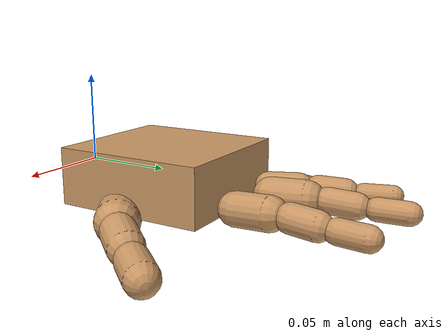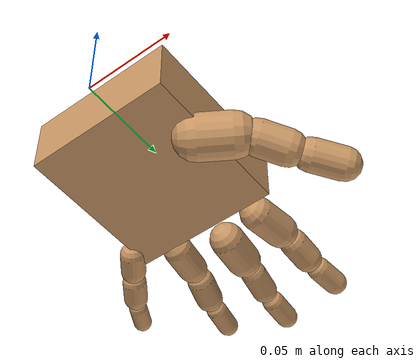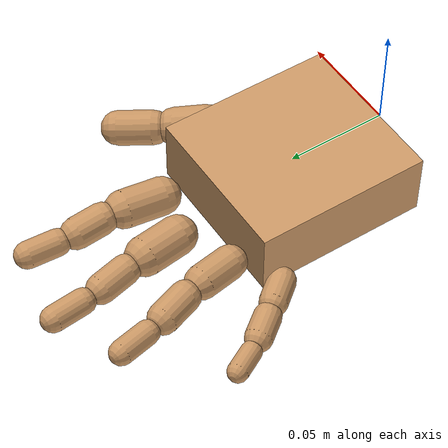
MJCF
<?xml version='1.0' encoding='utf-8'?>
<mujoco model="smplx_left_hand">
  <compiler coordinate="local" />
  <worldbody>
    <light pos="0 0 2" dir="0 0 -1" diffuse="1 1 1" specular="0.1 0.1 0.1" directional="true" />
    <body name="L_Wrist_Base" pos="0 0 0">
      <joint name="floating_base_joint" type="free" limited="false" actuatorfrclimited="false" />
      <body name="L_Wrist" pos="0 0 0" quat="1 0 0 0">
        <joint name="L_Wrist_x" type="hinge" pos="0 0 0" axis="1 0 0" stiffness="300" damping="30" armature="0.02" range="-180.0000 180.0000" limited="true" />
        <joint name="L_Wrist_y" type="hinge" pos="0 0 0" axis="0 1 0" stiffness="300" damping="30" armature="0.02" range="-180.0000 180.0000" limited="true" />
        <joint name="L_Wrist_z" type="hinge" pos="0 0 0" axis="0 0 1" stiffness="300" damping="30" armature="0.02" range="-180.0000 180.0000" limited="true" />
        <geom type="box" density="1198.336433" pos="-0.0031 0.0523 -0.0013" size="0.04 0.0428 0.0159" quat="1.0000 0.0000 0.0000 0.0000" conaffinity="1" condim="3" contype="7" margin="0.001" rgba="0.8 0.6 .4 1" />
        <body name="L_Index1" pos="0.0194 0.1019 -0.0087">
          <joint name="L_Index1_x" type="hinge" pos="0 0 0" axis="1 0 0" stiffness="100" damping="10" armature="0.02" range="-90 20" limited="true" />
          <joint name="L_Index1_y" type="hinge" pos="0 0 0" axis="0 1 0" stiffness="100" damping="10" armature="0.02" range="-0.1 0.1" limited="true" />
          <joint name="L_Index1_z" type="hinge" pos="0 0 0" axis="0 0 1" stiffness="100" damping="10" armature="0.02" range="-20 20" limited="true" />
          <geom type="capsule" contype="1" conaffinity="1" density="1000" fromto="0.0006 0.0064 0.0004 0.0024 0.0256 0.0018" size="0.0091" condim="3" margin="0.001" rgba="0.8 0.6 .4 1" />
          <body name="L_Index2" pos="0.003 0.0319 0.0022">
            <joint name="L_Index2_x" type="hinge" pos="0 0 0" axis="1 0 0" stiffness="100" damping="10" armature="0.02" range="-100 0" limited="true" />
            <joint name="L_Index2_y" type="hinge" pos="0 0 0" axis="0 1 0" stiffness="100" damping="10" armature="0.02" range="-0.1 0.1" limited="true" />
            <joint name="L_Index2_z" type="hinge" pos="0 0 0" axis="0 0 1" stiffness="100" damping="10" armature="0.02" range="-0.1 0.1" limited="true" />
            <geom type="capsule" contype="1" conaffinity="1" density="1000" fromto="0.0000 0.0045 -0.0005 0.0000 0.0180 -0.0019" size="0.0076" condim="3" margin="0.001" rgba="0.8 0.6 .4 1" />
            <body name="L_Index3" pos="0.0001 0.0225 -0.0024">
              <joint name="L_Index3_x" type="hinge" pos="0 0 0" axis="1 0 0" stiffness="100" damping="10" armature="0.02" range="-80 0" limited="true" />
              <joint name="L_Index3_y" type="hinge" pos="0 0 0" axis="0 1 0" stiffness="100" damping="10" armature="0.02" range="-0.1 0.1" limited="true" />
              <joint name="L_Index3_z" type="hinge" pos="0 0 0" axis="0 0 1" stiffness="100" damping="10" armature="0.02" range="-0.1 0.1" limited="true" />
              <geom type="capsule" contype="1" conaffinity="1" density="1000" fromto="0.0004 0.0049 -0.0001 0.0016 0.0196 -0.0003" size="0.0064" condim="3" margin="0.001" rgba="0.8 0.6 .4 1" />
            </body>
          </body>
        </body>
        <body name="L_Middle1" pos="-0.004 0.1094 -0.0063">
          <joint name="L_Middle1_x" type="hinge" pos="0 0 0" axis="1 0 0" stiffness="100" damping="10" armature="0.02" range="-90 20" limited="true" />
          <joint name="L_Middle1_y" type="hinge" pos="0 0 0" axis="0 1 0" stiffness="100" damping="10" armature="0.02" range="-0.1 0.1" limited="true" />
          <joint name="L_Middle1_z" type="hinge" pos="0 0 0" axis="0 0 1" stiffness="100" damping="10" armature="0.02" range="-20 20" limited="true" />
          <geom type="capsule" contype="1" conaffinity="1" density="1000" fromto="-0.0008 0.0061 0.0002 -0.0032 0.0245 0.0006" size="0.0094" condim="3" margin="0.001" rgba="0.8 0.6 .4 1" />
          <body name="L_Middle2" pos="-0.004 0.0306 0.0008">
            <joint name="L_Middle2_x" type="hinge" pos="0 0 0" axis="1 0 0" stiffness="100" damping="10" armature="0.02" range="-100 0" limited="true" />
            <joint name="L_Middle2_y" type="hinge" pos="0 0 0" axis="0 1 0" stiffness="100" damping="10" armature="0.02" range="-0.1 0.1" limited="true" />
            <joint name="L_Middle2_z" type="hinge" pos="0 0 0" axis="0 0 1" stiffness="100" damping="10" armature="0.02" range="-0.1 0.1" limited="true" />
            <geom type="capsule" contype="1" conaffinity="1" density="1000" fromto="-0.0008 0.0047 -0.0004 -0.0033 0.0188 -0.0016" size="0.007" condim="3" margin="0.001" rgba="0.8 0.6 .4 1" />
            <body name="L_Middle3" pos="-0.0041 0.0235 -0.002">
              <joint name="L_Middle3_x" type="hinge" pos="0 0 0" axis="1 0 0" stiffness="100" damping="10" armature="0.02" range="-80 0" limited="true" />
              <joint name="L_Middle3_y" type="hinge" pos="0 0 0" axis="0 1 0" stiffness="100" damping="10" armature="0.02" range="-0.1 0.1" limited="true" />
              <joint name="L_Middle3_z" type="hinge" pos="0 0 0" axis="0 0 1" stiffness="100" damping="10" armature="0.02" range="-0.1 0.1" limited="true" />
              <geom type="capsule" contype="1" conaffinity="1" density="1000" fromto="-0.0004 0.0051 -0.0000 -0.0017 0.0204 -0.0000" size="0.0061" condim="3" margin="0.001" rgba="0.8 0.6 .4 1" />
            </body>
          </body>
        </body>
        <body name="L_Pinky1" pos="-0.0437 0.084 -0.0145">
          <joint name="L_Pinky1_x" type="hinge" pos="0 0 0" axis="1 0 0" stiffness="100" damping="10" armature="0.02" range="-90 20" limited="true" />
          <joint name="L_Pinky1_y" type="hinge" pos="0 0 0" axis="0 1 0" stiffness="100" damping="10" armature="0.02" range="-0.1 0.1" limited="true" />
          <joint name="L_Pinky1_z" type="hinge" pos="0 0 0" axis="0 0 1" stiffness="100" damping="10" armature="0.02" range="-20 20" limited="true" />
          <geom type="capsule" contype="1" conaffinity="1" density="1000" fromto="-0.0024 0.0031 -0.0002 -0.0096 0.0124 -0.0009" size="0.0067" condim="3" margin="0.001" rgba="0.8 0.6 .4 1" />
          <body name="L_Pinky2" pos="-0.012 0.0155 -0.0011">
            <joint name="L_Pinky2_x" type="hinge" pos="0 0 0" axis="1 0 0" stiffness="100" damping="10" armature="0.02" range="-100 0" limited="true" />
            <joint name="L_Pinky2_y" type="hinge" pos="0 0 0" axis="0 1 0" stiffness="100" damping="10" armature="0.02" range="-0.1 0.1" limited="true" />
            <joint name="L_Pinky2_z" type="hinge" pos="0 0 0" axis="0 0 1" stiffness="100" damping="10" armature="0.02" range="-0.1 0.1" limited="true" />
            <geom type="capsule" contype="1" conaffinity="1" density="1000" fromto="-0.0022 0.0031 -0.0003 -0.0090 0.0124 -0.0013" size="0.0065" condim="3" margin="0.001" rgba="0.8 0.6 .4 1" />
            <body name="L_Pinky3" pos="-0.0112 0.0155 -0.0017">
              <joint name="L_Pinky3_x" type="hinge" pos="0 0 0" axis="1 0 0" stiffness="100" damping="10" armature="0.02" range="-80 0" limited="true" />
              <joint name="L_Pinky3_y" type="hinge" pos="0 0 0" axis="0 1 0" stiffness="100" damping="10" armature="0.02" range="-0.1 0.1" limited="true" />
              <joint name="L_Pinky3_z" type="hinge" pos="0 0 0" axis="0 0 1" stiffness="100" damping="10" armature="0.02" range="-0.1 0.1" limited="true" />
              <geom type="capsule" contype="1" conaffinity="1" density="1000" fromto="-0.0018 0.0035 0.0001 -0.0074 0.0140 0.0003" size="0.005" condim="3" margin="0.001" rgba="0.8 0.6 .4 1" />
            </body>
          </body>
        </body>
        <body name="L_Ring1" pos="-0.0273 0.0974 -0.0093">
          <joint name="L_Ring1_x" type="hinge" pos="0 0 0" axis="1 0 0" stiffness="100" damping="10" armature="0.02" range="-90 20" limited="true" />
          <joint name="L_Ring1_y" type="hinge" pos="0 0 0" axis="0 1 0" stiffness="100" damping="10" armature="0.02" range="-0.1 0.1" limited="true" />
          <joint name="L_Ring1_z" type="hinge" pos="0 0 0" axis="0 0 1" stiffness="100" damping="10" armature="0.02" range="-20 20" limited="true" />
          <geom type="capsule" contype="1" conaffinity="1" density="1000" fromto="-0.0011 0.0056 0.0003 -0.0042 0.0224 0.0012" size="0.008" condim="3" margin="0.001" rgba="0.8 0.6 .4 1" />
          <body name="L_Ring2" pos="-0.0053 0.028 0.0015">
            <joint name="L_Ring2_x" type="hinge" pos="0 0 0" axis="1 0 0" stiffness="100" damping="10" armature="0.02" range="-100 0" limited="true" />
            <joint name="L_Ring2_y" type="hinge" pos="0 0 0" axis="0 1 0" stiffness="100" damping="10" armature="0.02" range="-0.1 0.1" limited="true" />
            <joint name="L_Ring2_z" type="hinge" pos="0 0 0" axis="0 0 1" stiffness="100" damping="10" armature="0.02" range="-0.1 0.1" limited="true" />
            <geom type="capsule" contype="1" conaffinity="1" density="1000" fromto="-0.0014 0.0046 -0.0003 -0.0057 0.0183 -0.0012" size="0.0074" condim="3" margin="0.001" rgba="0.8 0.6 .4 1" />
            <body name="L_Ring3" pos="-0.0071 0.0228 -0.0015">
              <joint name="L_Ring3_x" type="hinge" pos="0 0 0" axis="1 0 0" stiffness="100" damping="10" armature="0.02" range="-80 0" limited="true" />
              <joint name="L_Ring3_y" type="hinge" pos="0 0 0" axis="0 1 0" stiffness="100" damping="10" armature="0.02" range="-0.1 0.1" limited="true" />
              <joint name="L_Ring3_z" type="hinge" pos="0 0 0" axis="0 0 1" stiffness="100" damping="10" armature="0.02" range="-0.1 0.1" limited="true" />
              <geom type="capsule" contype="1" conaffinity="1" density="1000" fromto="-0.0010 0.0050 0.0001 -0.0041 0.0199 0.0004" size="0.0057" condim="3" margin="0.001" rgba="0.8 0.6 .4 1" />
            </body>
          </body>
        </body>
        <body name="L_Thumb1" pos="0.0256 0.0406 -0.018">
          <joint name="L_Thumb1_x" type="hinge" pos="0 0 0" axis="1 0 0" stiffness="100" damping="10" armature="0.02" range="-45 45" limited="true" />
          <joint name="L_Thumb1_y" type="hinge" pos="0 0 0" axis="0 1 0" stiffness="100" damping="10" armature="0.02" range="-45 130" limited="true" />
          <joint name="L_Thumb1_z" type="hinge" pos="0 0 0" axis="0 0 1" stiffness="100" damping="10" armature="0.02" range="-30 70" limited="true" />
          <geom type="capsule" contype="1" conaffinity="1" density="1000" fromto="0.0050 0.0034 0.0002 0.0200 0.0136 0.0008" size="0.012" condim="3" margin="0.001" rgba="0.8 0.6 .4 1" />
          <body name="L_Thumb2" pos="0.025 0.017 0.001">
            <joint name="L_Thumb2_x" type="hinge" pos="0 0 0" axis="1 0 0" stiffness="100" damping="10" armature="0.02" range="-0.1 0.1" limited="true" />
            <joint name="L_Thumb2_y" type="hinge" pos="0 0 0" axis="0 1 0" stiffness="100" damping="10" armature="0.02" range="-0.1 0.1" limited="true" />
            <joint name="L_Thumb2_z" type="hinge" pos="0 0 0" axis="0 0 1" stiffness="100" damping="10" armature="0.02" range="-20 55" limited="true" />
            <geom type="capsule" contype="1" conaffinity="1" density="1000" fromto="0.0031 0.0041 -0.0010 0.0124 0.0164 -0.0041" size="0.0095" condim="3" margin="0.001" rgba="0.8 0.6 .4 1" />
            <body name="L_Thumb3" pos="0.0155 0.0205 -0.0052">
              <joint name="L_Thumb3_x" type="hinge" pos="0 0 0" axis="1 0 0" stiffness="100" damping="10" armature="0.02" range="-0.1 0.1" limited="true" />
              <joint name="L_Thumb3_y" type="hinge" pos="0 0 0" axis="0 1 0" stiffness="100" damping="10" armature="0.02" range="-0.1 0.1" limited="true" />
              <joint name="L_Thumb3_z" type="hinge" pos="0 0 0" axis="0 0 1" stiffness="100" damping="10" armature="0.02" range="-15 80" limited="true" />
              <geom type="capsule" contype="1" conaffinity="1" density="1000" fromto="0.0035 0.0045 -0.0006 0.0140 0.0180 -0.0025" size="0.0087" condim="3" margin="0.001" rgba="0.8 0.6 .4 1" />
            </body>
          </body>
        </body>
      </body>
    </body>
  </worldbody>
  <actuator>
    <motor name="L_Wrist_x" joint="L_Wrist_x" gear="500" />
    <motor name="L_Wrist_y" joint="L_Wrist_y" gear="500" />
    <motor name="L_Wrist_z" joint="L_Wrist_z" gear="500" />
    <motor name="L_Index1_x" joint="L_Index1_x" gear="500" />
    <motor name="L_Index1_y" joint="L_Index1_y" gear="500" />
    <motor name="L_Index1_z" joint="L_Index1_z" gear="500" />
    <motor name="L_Index2_x" joint="L_Index2_x" gear="500" />
    <motor name="L_Index2_y" joint="L_Index2_y" gear="500" />
    <motor name="L_Index2_z" joint="L_Index2_z" gear="500" />
    <motor name="L_Index3_x" joint="L_Index3_x" gear="500" />
    <motor name="L_Index3_y" joint="L_Index3_y" gear="500" />
    <motor name="L_Index3_z" joint="L_Index3_z" gear="500" />
    <motor name="L_Middle1_x" joint="L_Middle1_x" gear="500" />
    <motor name="L_Middle1_y" joint="L_Middle1_y" gear="500" />
    <motor name="L_Middle1_z" joint="L_Middle1_z" gear="500" />
    <motor name="L_Middle2_x" joint="L_Middle2_x" gear="500" />
    <motor name="L_Middle2_y" joint="L_Middle2_y" gear="500" />
    <motor name="L_Middle2_z" joint="L_Middle2_z" gear="500" />
    <motor name="L_Middle3_x" joint="L_Middle3_x" gear="500" />
    <motor name="L_Middle3_y" joint="L_Middle3_y" gear="500" />
    <motor name="L_Middle3_z" joint="L_Middle3_z" gear="500" />
    <motor name="L_Pinky1_x" joint="L_Pinky1_x" gear="500" />
    <motor name="L_Pinky1_y" joint="L_Pinky1_y" gear="500" />
    <motor name="L_Pinky1_z" joint="L_Pinky1_z" gear="500" />
    <motor name="L_Pinky2_x" joint="L_Pinky2_x" gear="500" />
    <motor name="L_Pinky2_y" joint="L_Pinky2_y" gear="500" />
    <motor name="L_Pinky2_z" joint="L_Pinky2_z" gear="500" />
    <motor name="L_Pinky3_x" joint="L_Pinky3_x" gear="500" />
    <motor name="L_Pinky3_y" joint="L_Pinky3_y" gear="500" />
    <motor name="L_Pinky3_z" joint="L_Pinky3_z" gear="500" />
    <motor name="L_Ring1_x" joint="L_Ring1_x" gear="500" />
    <motor name="L_Ring1_y" joint="L_Ring1_y" gear="500" />
    <motor name="L_Ring1_z" joint="L_Ring1_z" gear="500" />
    <motor name="L_Ring2_x" joint="L_Ring2_x" gear="500" />
    <motor name="L_Ring2_y" joint="L_Ring2_y" gear="500" />
    <motor name="L_Ring2_z" joint="L_Ring2_z" gear="500" />
    <motor name="L_Ring3_x" joint="L_Ring3_x" gear="500" />
    <motor name="L_Ring3_y" joint="L_Ring3_y" gear="500" />
    <motor name="L_Ring3_z" joint="L_Ring3_z" gear="500" />
    <motor name="L_Thumb1_x" joint="L_Thumb1_x" gear="500" />
    <motor name="L_Thumb1_y" joint="L_Thumb1_y" gear="500" />
    <motor name="L_Thumb1_z" joint="L_Thumb1_z" gear="500" />
    <motor name="L_Thumb2_x" joint="L_Thumb2_x" gear="500" />
    <motor name="L_Thumb2_y" joint="L_Thumb2_y" gear="500" />
    <motor name="L_Thumb2_z" joint="L_Thumb2_z" gear="500" />
    <motor name="L_Thumb3_x" joint="L_Thumb3_x" gear="500" />
    <motor name="L_Thumb3_y" joint="L_Thumb3_y" gear="500" />
    <motor name="L_Thumb3_z" joint="L_Thumb3_z" gear="500" />
  </actuator>
  <contact />
  <sensor />
  <size njmax="256" nconmax="256" />
</mujoco>
